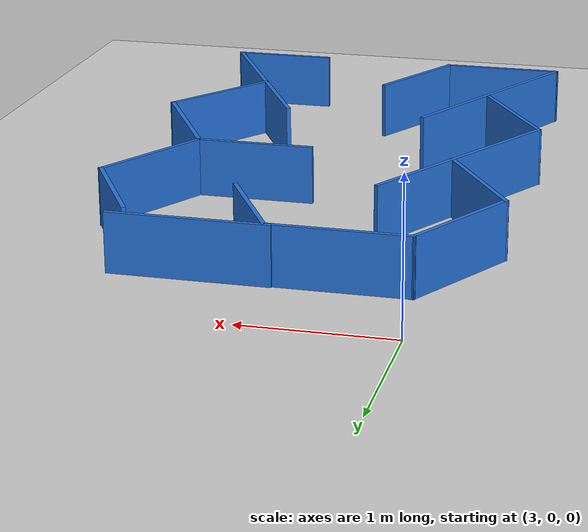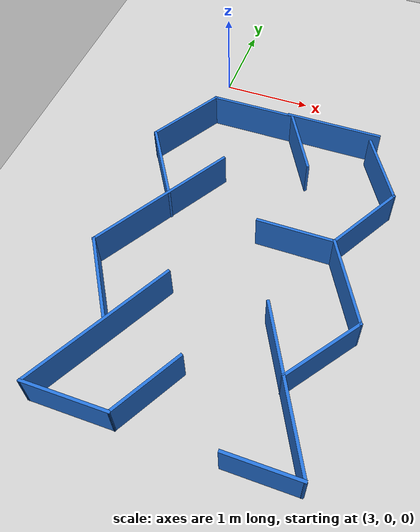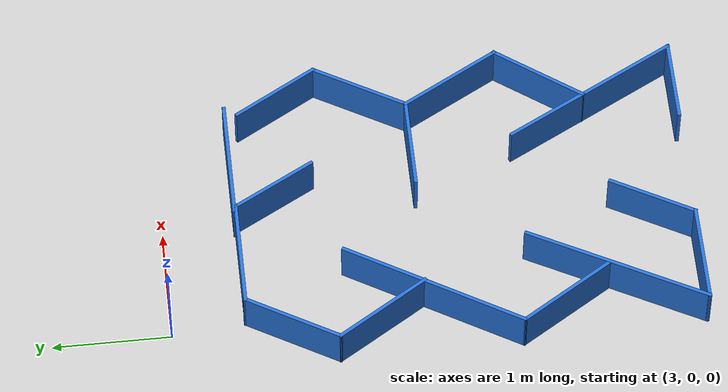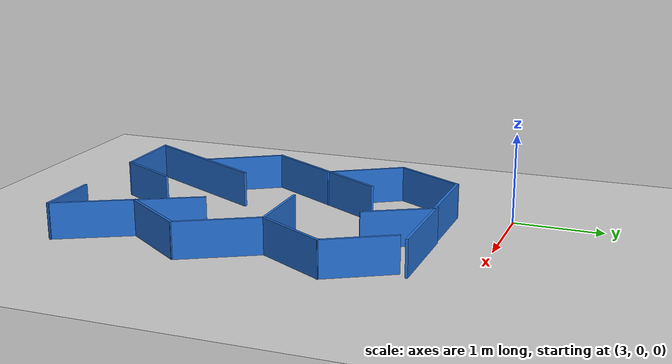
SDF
<?xml version="1.0" ?>
<sdf version="1.10">
<world name="nhom8_maze_delta_1">
  <physics name="8ms" type="ignored">
    <max_step_size>0.008</max_step_size>
    <real_time_factor>1.0</real_time_factor>
  </physics>
  <plugin filename="gz-sim-physics-system"   name="gz::sim::systems::Physics"/>
  <plugin filename="gz-sim-user-commands-system" name="gz::sim::systems::UserCommands"/>
  <plugin filename="gz-sim-scene-broadcaster-system" name="gz::sim::systems::SceneBroadcaster"/>
  <plugin filename="gz-sim-sensors-system" name="gz::sim::systems::Sensors">
    <render_engine>ogre2</render_engine>
  </plugin>

  <light type="directional" name="sun">
    <cast_shadows>true</cast_shadows>
    <pose>0 0 10 0 0 0</pose>
    <diffuse>1 1 1 1</diffuse>
    <specular>0.5 0.5 0.5 1</specular>
    <attenuation><range>1000</range><constant>0.9</constant>
      <linear>0.01</linear><quadratic>0.001</quadratic></attenuation>
    <direction>-0.5 0.1 -0.9</direction>
  </light>

  <model name="ground_plane">
    <static>true</static>
    <link name="link">
      <collision name="collision">
        <geometry><plane><normal>0 0 1</normal><size>50.0 50.0</size></plane></geometry>
        <surface><friction><ode><mu>40</mu></ode></friction></surface>
      </collision>
      <visual name="visual">
        <geometry><plane><normal>0 0 1</normal><size>50.0 50.0</size></plane></geometry>
        <material>
          <ambient>0.8 0.8 0.8 1</ambient><diffuse>0.8 0.8 0.8 1</diffuse>
          <specular>0.8 0.8 0.8 1</specular>
        </material>
      </visual>
    </link>
  </model>

  <!--  MAZE delta_1 (family delta)                -->
  <!--  walls: 17   wall bbox (local): (-1.3399, -1.9243, 1.3567, 1.9228)   -->
  <!--  openings: entrance=north@(0.495,1.923) hw=0.500  exit=south@(0.053,-1.924) hw=0.470   -->
  <!--  start (local): (0.4782, 1.6497) yaw=-1.8185 rad  -->
  <!--  placement center: (3.9650, -2.5350)   -->

    <model name="wall_000">
      <static>true</static>
      <pose>3.523500 -0.625300 0.2000 0 0 0.000000</pose>
      <link name="link">
        <collision name="col">
          <geometry><box><size>0.9460 0.0300 0.4000</size></box></geometry>
        </collision>
        <visual name="vis">
          <geometry><box><size>0.9460 0.0300 0.4000</size></box></geometry>
          <material><ambient>0.15 0.45 0.85 1</ambient><diffuse>0.15 0.45 0.85 1</diffuse></material>
        </visual>
      </link>
    </model>

    <model name="wall_001">
      <static>true</static>
      <pose>4.470550 -2.151700 0.2000 0 0 0.000000</pose>
      <link name="link">
        <collision name="col">
          <geometry><box><size>0.8179 0.0300 0.4000</size></box></geometry>
        </collision>
        <visual name="vis">
          <geometry><box><size>0.8179 0.0300 0.4000</size></box></geometry>
          <material><ambient>0.15 0.45 0.85 1</ambient><diffuse>0.15 0.45 0.85 1</diffuse></material>
        </visual>
      </link>
    </model>

    <model name="wall_002">
      <static>true</static>
      <pose>3.123700 -4.446000 0.2000 0 0 0.000000</pose>
      <link name="link">
        <collision name="col">
          <geometry><box><size>0.8626 0.0300 0.4000</size></box></geometry>
        </collision>
        <visual name="vis">
          <geometry><box><size>0.8626 0.0300 0.4000</size></box></geometry>
          <material><ambient>0.15 0.45 0.85 1</ambient><diffuse>0.15 0.45 0.85 1</diffuse></material>
        </visual>
      </link>
    </model>

    <model name="wall_003">
      <static>true</static>
      <pose>4.870350 -4.446000 0.2000 0 0 0.000000</pose>
      <link name="link">
        <collision name="col">
          <geometry><box><size>0.7345 0.0300 0.4000</size></box></geometry>
        </collision>
        <visual name="vis">
          <geometry><box><size>0.7345 0.0300 0.4000</size></box></geometry>
          <material><ambient>0.15 0.45 0.85 1</ambient><diffuse>0.15 0.45 0.85 1</diffuse></material>
        </visual>
      </link>
    </model>

    <model name="wall_004">
      <static>true</static>
      <pose>5.098800 -1.059550 0.2000 0 0 -1.047164</pose>
      <link name="link">
        <collision name="col">
          <geometry><box><size>0.8184 0.0300 0.4000</size></box></geometry>
        </collision>
        <visual name="vis">
          <geometry><box><size>0.8184 0.0300 0.4000</size></box></geometry>
          <material><ambient>0.15 0.45 0.85 1</ambient><diffuse>0.15 0.45 0.85 1</diffuse></material>
        </visual>
      </link>
    </model>

    <model name="wall_005">
      <static>true</static>
      <pose>4.166450 -0.959650 0.2000 0 0 -1.065410</pose>
      <link name="link">
        <collision name="col">
          <geometry><box><size>0.7942 0.0300 0.4000</size></box></geometry>
        </collision>
        <visual name="vis">
          <geometry><box><size>0.7942 0.0300 0.4000</size></box></geometry>
          <material><ambient>0.15 0.45 0.85 1</ambient><diffuse>0.15 0.45 0.85 1</diffuse></material>
        </visual>
      </link>
    </model>

    <model name="wall_006">
      <static>true</static>
      <pose>5.088750 -2.555350 0.2000 0 0 -1.063840</pose>
      <link name="link">
        <collision name="col">
          <geometry><box><size>0.9534 0.0300 0.4000</size></box></geometry>
        </collision>
        <visual name="vis">
          <geometry><box><size>0.9534 0.0300 0.4000</size></box></geometry>
          <material><ambient>0.15 0.45 0.85 1</ambient><diffuse>0.15 0.45 0.85 1</diffuse></material>
        </visual>
      </link>
    </model>

    <model name="wall_007">
      <static>true</static>
      <pose>4.842100 -3.729150 0.2000 0 0 -1.082881</pose>
      <link name="link">
        <collision name="col">
          <geometry><box><size>1.6532 0.0300 0.4000</size></box></geometry>
        </collision>
        <visual name="vis">
          <geometry><box><size>1.6532 0.0300 0.4000</size></box></geometry>
          <material><ambient>0.15 0.45 0.85 1</ambient><diffuse>0.15 0.45 0.85 1</diffuse></material>
        </visual>
      </link>
    </model>

    <model name="wall_008">
      <static>true</static>
      <pose>2.867300 -1.747650 0.2000 0 0 -1.010998</pose>
      <link name="link">
        <collision name="col">
          <geometry><box><size>0.9107 0.0300 0.4000</size></box></geometry>
        </collision>
        <visual name="vis">
          <geometry><box><size>0.9107 0.0300 0.4000</size></box></geometry>
          <material><ambient>0.15 0.45 0.85 1</ambient><diffuse>0.15 0.45 0.85 1</diffuse></material>
        </visual>
      </link>
    </model>

    <model name="wall_009">
      <static>true</static>
      <pose>2.867050 -3.276300 0.2000 0 0 -1.010777</pose>
      <link name="link">
        <collision name="col">
          <geometry><box><size>0.9110 0.0300 0.4000</size></box></geometry>
        </collision>
        <visual name="vis">
          <geometry><box><size>0.9110 0.0300 0.4000</size></box></geometry>
          <material><ambient>0.15 0.45 0.85 1</ambient><diffuse>0.15 0.45 0.85 1</diffuse></material>
        </visual>
      </link>
    </model>

    <model name="wall_010">
      <static>true</static>
      <pose>5.059100 -3.309400 0.2000 0 0 0.944004</pose>
      <link name="link">
        <collision name="col">
          <geometry><box><size>0.8954 0.0300 0.4000</size></box></geometry>
        </collision>
        <visual name="vis">
          <geometry><box><size>0.8954 0.0300 0.4000</size></box></geometry>
          <material><ambient>0.15 0.45 0.85 1</ambient><diffuse>0.15 0.45 0.85 1</diffuse></material>
        </visual>
      </link>
    </model>

    <model name="wall_011">
      <static>true</static>
      <pose>5.080250 -1.776300 0.2000 0 0 1.049310</pose>
      <link name="link">
        <collision name="col">
          <geometry><box><size>0.8959 0.0300 0.4000</size></box></geometry>
        </collision>
        <visual name="vis">
          <geometry><box><size>0.8959 0.0300 0.4000</size></box></geometry>
          <material><ambient>0.15 0.45 0.85 1</ambient><diffuse>0.15 0.45 0.85 1</diffuse></material>
        </visual>
      </link>
    </model>

    <model name="wall_012">
      <static>true</static>
      <pose>3.724850 -4.111000 0.2000 0 0 1.066422</pose>
      <link name="link">
        <collision name="col">
          <geometry><box><size>0.7952 0.0300 0.4000</size></box></geometry>
        </collision>
        <visual name="vis">
          <geometry><box><size>0.7952 0.0300 0.4000</size></box></geometry>
          <material><ambient>0.15 0.45 0.85 1</ambient><diffuse>0.15 0.45 0.85 1</diffuse></material>
        </visual>
      </link>
    </model>

    <model name="wall_013">
      <static>true</static>
      <pose>3.088300 -3.728950 0.2000 0 0 1.082511</pose>
      <link name="link">
        <collision name="col">
          <geometry><box><size>1.6538 0.0300 0.4000</size></box></geometry>
        </collision>
        <visual name="vis">
          <geometry><box><size>1.6538 0.0300 0.4000</size></box></geometry>
          <material><ambient>0.15 0.45 0.85 1</ambient><diffuse>0.15 0.45 0.85 1</diffuse></material>
        </visual>
      </link>
    </model>

    <model name="wall_014">
      <static>true</static>
      <pose>3.051550 -2.192550 0.2000 0 0 1.038568</pose>
      <link name="link">
        <collision name="col">
          <geometry><box><size>1.6792 0.0300 0.4000</size></box></geometry>
        </collision>
        <visual name="vis">
          <geometry><box><size>1.6792 0.0300 0.4000</size></box></geometry>
          <material><ambient>0.15 0.45 0.85 1</ambient><diffuse>0.15 0.45 0.85 1</diffuse></material>
        </visual>
      </link>
    </model>

    <model name="wall_015">
      <static>true</static>
      <pose>2.849450 -0.999900 0.2000 0 0 1.047645</pose>
      <link name="link">
        <collision name="col">
          <geometry><box><size>0.8949 0.0300 0.4000</size></box></geometry>
        </collision>
        <visual name="vis">
          <geometry><box><size>0.8949 0.0300 0.4000</size></box></geometry>
          <material><ambient>0.15 0.45 0.85 1</ambient><diffuse>0.15 0.45 0.85 1</diffuse></material>
        </visual>
      </link>
    </model>

    <model name="wall_016">
      <static>true</static>
      <pose>4.459900 -0.612200 0.2000 0 0 0.000000</pose>
      <link name="link">
        <collision name="col">
          <geometry><box><size>1.0600 0.0300 0.4000</size></box></geometry>
        </collision>
        <visual name="vis">
          <geometry><box><size>1.0600 0.0300 0.4000</size></box></geometry>
          <material><ambient>0.15 0.45 0.85 1</ambient><diffuse>0.15 0.45 0.85 1</diffuse></material>
        </visual>
      </link>
    </model>

    <model name="floor">
      <static>true</static>
      <pose>3.965000 -2.535000 -0.02 0 0 0</pose>
      <link name="link">
        <collision name="col">
          <geometry><box><size>2.7966 3.9471 0.03</size></box></geometry>
        </collision>
        <visual name="vis">
          <geometry><box><size>2.7966 3.9471 0.03</size></box></geometry>
          <material><ambient>0.87 0.87 0.82 1</ambient><diffuse>0.87 0.87 0.82 1</diffuse></material>
        </visual>
      </link>
    </model>
</world>
</sdf>
